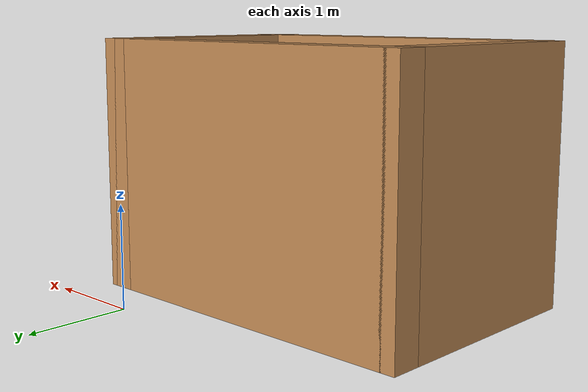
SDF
<?xml version='1.0'?>
<sdf version='1.7'>
  <model name='limits'>
    <pose>-1.045 -1.415 0 0 -0 0</pose>
    <link name='Wall_3'>
      <collision name='Wall_3_Collision'>
        <geometry>
          <box>
            <size>2.4 0.3 2.5</size>
          </box>
        </geometry>
        <pose>0 0 1.25 0 -0 0</pose>
      </collision>
      <visual name='Wall_3_Visual'>
        <pose>0 0 1.25 0 -0 0</pose>
        <geometry>
          <box>
            <size>2.4 0.3 2.5</size>
          </box>
        </geometry>
        <material>
          <script>
            <uri>file://media/materials/scripts/gazebo.material</uri>
            <name>Gazebo/Wood</name>
          </script>
          <ambient>1 1 1 1</ambient>
        </material>
        <meta>
          <layer>0</layer>
        </meta>
      </visual>
      <pose>-1.675 -0.215 0 0 -0 -1.5708</pose>
    </link>
    <link name='Wall_5'>
      <collision name='Wall_5_Collision'>
        <geometry>
          <box>
            <size>3.65 0.3 2.5</size>
          </box>
        </geometry>
        <pose>0 0 1.25 0 -0 0</pose>
      </collision>
      <visual name='Wall_5_Visual'>
        <pose>0 0 1.25 0 -0 0</pose>
        <geometry>
          <box>
            <size>3.65 0.3 2.5</size>
          </box>
        </geometry>
        <material>
          <script>
            <uri>file://media/materials/scripts/gazebo.material</uri>
            <name>Gazebo/Wood</name>
          </script>
          <ambient>1 1 1 1</ambient>
        </material>
        <meta>
          <layer>0</layer>
        </meta>
      </visual>
      <pose>0 0.835 0 0 -0 0</pose>
    </link>
    <link name='Wall_6'>
      <collision name='Wall_6_Collision'>
        <geometry>
          <box>
            <size>2.4 0.3 2.5</size>
          </box>
        </geometry>
        <pose>0 0 1.25 0 -0 0</pose>
      </collision>
      <visual name='Wall_6_Visual'>
        <pose>0 0 1.25 0 -0 0</pose>
        <geometry>
          <box>
            <size>2.4 0.3 2.5</size>
          </box>
        </geometry>
        <material>
          <script>
            <uri>file://media/materials/scripts/gazebo.material</uri>
            <name>Gazebo/Wood</name>
          </script>
          <ambient>1 1 1 1</ambient>
        </material>
        <meta>
          <layer>0</layer>
        </meta>
      </visual>
      <pose>1.675 -0.215 0 0 -0 -1.5708</pose>
    </link>
    <link name='Wall_7'>
      <collision name='Wall_7_Collision'>
        <geometry>
          <box>
            <size>3.65 0.3 2.5</size>
          </box>
        </geometry>
        <pose>0 0 1.25 0 -0 0</pose>
      </collision>
      <visual name='Wall_7_Visual'>
        <pose>0 0 1.25 0 -0 0</pose>
        <geometry>
          <box>
            <size>3.65 0.3 2.5</size>
          </box>
        </geometry>
        <material>
          <script>
            <uri>file://media/materials/scripts/gazebo.material</uri>
            <name>Gazebo/Wood</name>
          </script>
          <ambient>1 1 1 1</ambient>
        </material>
        <meta>
          <layer>0</layer>
        </meta>
      </visual>
      <pose>0 -1.265 0 0 -0 3.14159</pose>
    </link>
    <static>1</static>
  </model>
</sdf>
